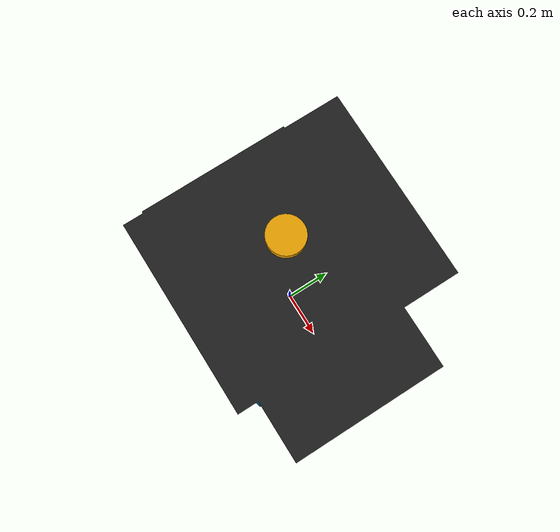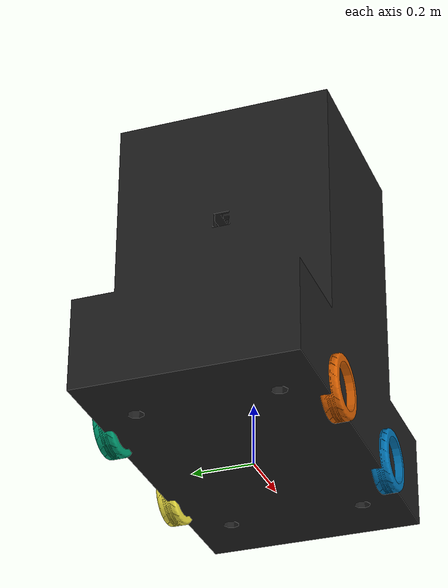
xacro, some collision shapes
<?xml version="1.0" ?>
<robot name="turtlebot3_waffle" xmlns:xacro="http://ros.org/wiki/xacro">
  <xacro:include filename="$(find turtlebot3_description)/urdf/common_properties.xacro"/>
  <xacro:include filename="$(find turtlebot3_description)/urdf/turtlebot3_waffle.gazebo.xacro"/>

  <link name="base_footprint"/>

  <joint name="base_joint" type="fixed">
    <parent link="base_footprint"/>
    <child link="base_link"/>
    <origin xyz="0.0 0.0 0.01" rpy="0 0 0"/>
  </joint>

  <link name="base_link">
    <visual>
      <origin xyz="0.0 0 0.0" rpy="0 0 0"/>
      <geometry>
        <mesh filename="package://covid_robot_description/meshes/bases/covid_robot_body.stl" scale="0.001 0.001 0.001"/>
      </geometry>
      <material name="light_black"/>
    </visual>

    <collision>
      <origin xyz="-0.032 0 0.070" rpy="0 0 0"/>
      <geometry>
        <box size="0.140 0.140 0.143"/>
      </geometry>
    </collision>

    <inertial>
      <origin xyz="0 0 0" rpy="0 0 0"/>
      <mass value="8.2573504"/>
      <inertia ixx="2.2124416e-01" ixy="-1.2294101e-03" ixz="3.4938785e-03"
               iyy="2.1193702e-01" iyz="-5.0120904e-04"
               izz="2.0064271e-01" />
    </inertial>
  </link>

  <joint name="wheel_left_joint_fixed" type="continuous">
    <parent link="base_link"/>
    <child link="wheel_left_link_fixed"/>
    <origin xyz="-0.25 0.38 0.06" rpy="-1.57 0 0"/>
    <axis xyz="0 0 1"/>
  </joint>

  <link name="wheel_left_link_fixed">
    <visual>
      <origin xyz="0 0 0" rpy="1.57 0 0"/>
      <geometry>
        <mesh filename="package://covid_robot_description/meshes/wheels/covid_robot_tire.stl" scale="0.001 0.001 0.001"/>
      </geometry>
      <material name="dark"/>
    </visual>

    <collision>
      <origin xyz="0 0 0" rpy="0 0 0"/>
      <geometry>
        <cylinder length="0.018" radius="0.033"/>
      </geometry>
    </collision>

    <inertial>
      <origin xyz="0 0 0" />
      <mass value="2.8498940e-02" />
      <inertia ixx="1.1175580e-05" ixy="-4.2369783e-11" ixz="-5.9381719e-09"
               iyy="1.1192413e-05" iyz="-1.4400107e-11"
               izz="2.0712558e-05" />
      </inertial>
  </link>

  <joint name="wheel_left_joint" type="continuous">
    <parent link="base_link"/>
    <child link="wheel_left_link"/>
    <origin xyz="0.25 0.38 0.06" rpy="-1.57 0 0"/>
    <axis xyz="0 0 1"/>
  </joint>

  <link name="wheel_left_link">
    <visual>
      <origin xyz="0 0 0" rpy="1.57 0 0"/>
      <geometry>
        <mesh filename="package://covid_robot_description/meshes/wheels/covid_robot_tire.stl" scale="0.001 0.001 0.001"/>
      </geometry>
      <material name="dark"/>
    </visual>

    <collision>
      <origin xyz="0 0 0" rpy="0 0 0"/>
      <geometry>
        <cylinder length="0.018" radius="0.033"/>
      </geometry>
    </collision>

    <inertial>
      <origin xyz="0 0 0" />
      <mass value="2.8498940e-02" />
      <inertia ixx="1.1175580e-05" ixy="-4.2369783e-11" ixz="-5.9381719e-09"
               iyy="1.1192413e-05" iyz="-1.4400107e-11"
               izz="2.0712558e-05" />
      </inertial>
  </link>

  <joint name="wheel_right_joint" type="continuous">
    <parent link="base_link"/>
    <child link="wheel_right_link"/>
    <origin xyz="0.25 -0.32 0.06" rpy="-1.57 0 0"/>
    <axis xyz="0 0 1"/>
  </joint>

  <link name="wheel_right_link">
    <visual>
      <origin xyz="0 0 0" rpy="1.57 0 0"/>
      <geometry>
        <mesh filename="package://covid_robot_description/meshes/wheels/covid_robot_tire.stl" scale="0.001 0.001 0.001"/>
      </geometry>
      <material name="dark"/>
    </visual>

    <collision>
      <origin xyz="0 0 0" rpy="0 0 0"/>
      <geometry>
        <cylinder length="0.018" radius="0.033"/>
      </geometry>
    </collision>

    <inertial>
      <origin xyz="0 0 0" />
      <mass value="2.8498940e-02" />
      <inertia ixx="1.1175580e-05" ixy="-4.2369783e-11" ixz="-5.9381719e-09"
               iyy="1.1192413e-05" iyz="-1.4400107e-11"
               izz="2.0712558e-05" />
      </inertial>
  </link>

  <joint name="wheel_right_joint_fixed" type="continuous">
    <parent link="base_link"/>
    <child link="wheel_right_link_fixed"/>
    <origin xyz="-0.25 -0.32 0.06" rpy="-1.57 0 0"/>
    <axis xyz="0 0 1"/>
  </joint>

  <link name="wheel_right_link_fixed">
    <visual>
      <origin xyz="0 0 0" rpy="1.57 0 0"/>
      <geometry>
        <mesh filename="package://covid_robot_description/meshes/wheels/covid_robot_tire.stl" scale="0.001 0.001 0.001"/>
      </geometry>
      <material name="dark"/>
    </visual>

    <collision>
      <origin xyz="0 0 0" rpy="0 0 0"/>
      <geometry>
        <cylinder length="0.018" radius="0.033"/>
      </geometry>
    </collision>

    <inertial>
      <origin xyz="0 0 0" />
      <mass value="2.8498940e-02" />
      <inertia ixx="1.1175580e-05" ixy="-4.2369783e-11" ixz="-5.9381719e-09"
               iyy="1.1192413e-05" iyz="-1.4400107e-11"
               izz="2.0712558e-05" />
      </inertial>
  </link>

  <joint name="caster_back_joint" type="fixed">
    <parent link="base_link"/>
    <child link="caster_back_link"/>
    <origin xyz="-0.081 0 -0.004" rpy="-1.57 0 0"/>
  </joint>

  <link name="caster_back_link">
    <collision>
      <origin xyz="0 0.001 0" rpy="0 0 0"/>
      <geometry>
        <box size="0.030 0.009 0.020"/>
      </geometry>
    </collision>

    <inertial>
      <origin xyz="0 0 0" />
      <mass value="0.005" />
      <inertia ixx="0.001" ixy="0.0" ixz="0.0"
               iyy="0.001" iyz="0.0"
               izz="0.001" />
    </inertial>
  </link>

  <joint name="imu_joint" type="fixed">
    <parent link="base_link"/>
    <child link="imu_link"/>
    <origin xyz="-0.032 0 0.068" rpy="0 0 0"/>
  </joint>

  <link name="imu_link"/>

  <joint name="scan_joint" type="fixed">
    <parent link="base_link"/>
    <child link="base_scan"/>
    <origin xyz="-0.032 0 1.2" rpy="0 0 0"/>
  </joint>

  <link name="base_scan">
    <visual>
      <origin xyz="0 0 0.0" rpy="0 0 0"/>
      <geometry>
	      <mesh filename="package://turtlebot3_description/meshes/sensors/lds.stl" scale="0.001 0.001 0.001"/>
      </geometry>
      <material name="dark"/>
    </visual>

    <collision>
      <origin xyz="0.015 0 -0.0065" rpy="0 0 0"/>
      <geometry>
        <cylinder length="0.0315" radius="0.055"/>
      </geometry>
    </collision>

    <inertial>
      <mass value="0.114" />
      <origin xyz="0 0 0" />
      <inertia ixx="0.001" ixy="0.0" ixz="0.0"
               iyy="0.001" iyz="0.0"
               izz="0.001" />
    </inertial>
  </link>

</robot>
